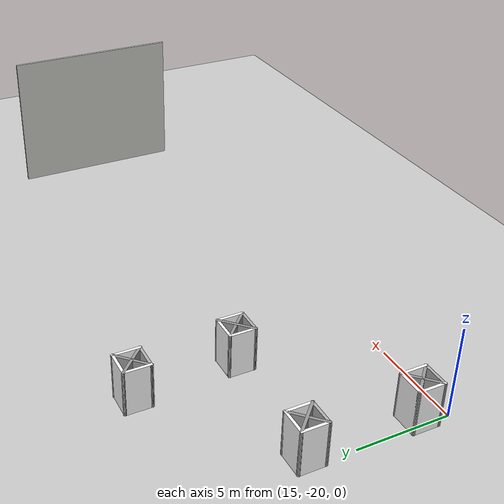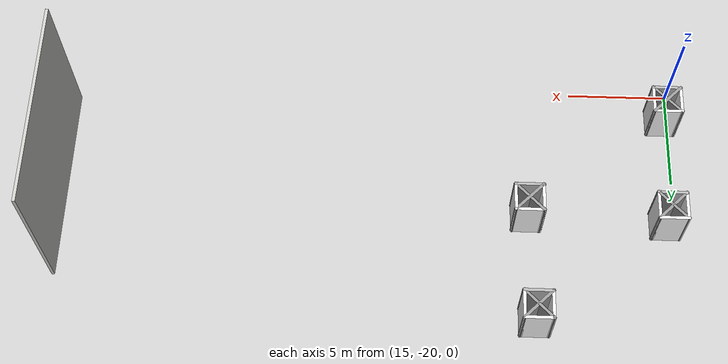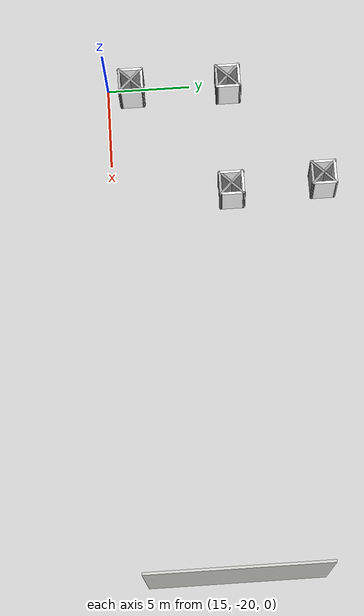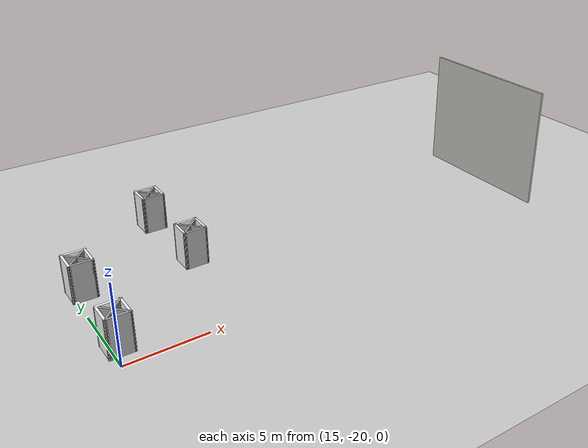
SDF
<sdf version="1.7">
 <world name="default">
  <model name="ground_plane">
   <static>1</static>
   <link name="link">
    <collision name="collision">
     <geometry><plane><normal>0 0 1</normal><size>100 100</size></plane></geometry>
     <surface>
      <contact><collide_bitmask>65535</collide_bitmask></contact>
      <friction><ode><mu>100</mu><mu2>50</mu2></ode></friction>
     </surface>
    </collision>
    <visual name="visual">
     <cast_shadows>0</cast_shadows>
     <geometry><plane><normal>0 0 1</normal><size>100 100</size></plane></geometry>
     <material>
      <script><uri>file://media/materials/scripts/gazebo.material</uri><name>Gazebo/Grey</name></script>
     </material>
    </visual>
   </link>
  </model>
  <model name="Untitled_0_clone_6_clone_clone_clone">
   <link name="Wall_2">
    <pose>-0.307499 -1.8625 0 0 0 -1.5708</pose>
    <inertial>
     <mass>1</mass>
     <inertia><ixx>1</ixx><ixy>0</ixy><ixz>0</ixz><iyy>1</iyy><iyz>0</iyz><izz>1</izz></inertia>
    </inertial>
    <visual name="Wall_2_Visual">
     <pose>0 0 4.05 0 -0 0</pose>
     <geometry><box><size>10 0.15 8.1</size></box></geometry>
     <material>
      <script><uri>file://media/materials/scripts/gazebo.material</uri><name>Gazebo/CeilingTiled</name></script>
      <ambient>1 1 1 1</ambient>
      <shader type="pixel"><normal_map>__default__</normal_map></shader>
      <diffuse>1 1 1 1</diffuse>
      <specular>0 0 0 1</specular>
      <emissive>0 0 0 1</emissive>
     </material>
     <meta><layer>0</layer></meta>
    </visual>
    <collision name="Wall_2_Collision">
     <pose>0 0 4.05 0 -0 0</pose>
     <geometry><box><size>10 0.15 8.1</size></box></geometry>
     <surface>
      <friction>
       <ode><mu>1</mu><mu2>1</mu2><fdir1>0 0 0</fdir1><slip1>0</slip1><slip2>0</slip2></ode>
       <torsional>
        <coefficient>1</coefficient>
        <patch_radius>0</patch_radius>
        <surface_radius>0</surface_radius>
        <use_patch_radius>1</use_patch_radius>
        <ode><slip>0</slip></ode>
       </torsional>
      </friction>
      <bounce><restitution_coefficient>0</restitution_coefficient><threshold>1e+06</threshold></bounce>
      <contact>
       <collide_without_contact>0</collide_without_contact>
       <collide_without_contact_bitmask>1</collide_without_contact_bitmask>
       <collide_bitmask>1</collide_bitmask>
       <ode>
        <soft_cfm>0</soft_cfm>
        <soft_erp>0.2</soft_erp>
        <kp>1e+13</kp>
        <kd>1</kd>
        <max_vel>0.01</max_vel>
        <min_depth>0</min_depth>
       </ode>
       <bullet>
        <split_impulse>1</split_impulse>
        <split_impulse_penetration_threshold>-0.01</split_impulse_penetration_threshold>
        <soft_cfm>0</soft_cfm>
        <soft_erp>0.2</soft_erp>
        <kp>1e+13</kp>
        <kd>1</kd>
       </bullet>
      </contact>
     </surface>
    </collision>
   </link>
   <static>1</static>
   <pose>45.7573 -12.2284 0 0 -0 0</pose>
  </model>
  <model name="Untitled_1_clone_3_clone_clone_4">
   <link name="Wall_10">
    <pose>4.92197 -3.43197 0 0 -0 1.5708</pose>
    <inertial>
     <mass>1</mass>
     <inertia><ixx>1</ixx><ixy>0</ixy><ixz>0</ixz><iyy>1</iyy><iyz>0</iyz><izz>1</izz></inertia>
    </inertial>
    <visual name="Wall_10_Visual">
     <pose>0 0 1.25 0 -0 0</pose>
     <geometry><box><size>1.5 0.15 2.5</size></box></geometry>
     <material>
      <script><uri>file://media/materials/scripts/gazebo.material</uri><name>Gazebo/CoM</name></script>
      <ambient>1 1 1 1</ambient>
      <shader type="pixel"><normal_map>__default__</normal_map></shader>
      <diffuse>1 1 1 1</diffuse>
      <specular>0 0 0 1</specular>
      <emissive>0 0 0 1</emissive>
     </material>
     <meta><layer>0</layer></meta>
    </visual>
    <collision name="Wall_10_Collision">
     <pose>0 0 1.25 0 -0 0</pose>
     <geometry><box><size>1.5 0.15 2.5</size></box></geometry>
     <surface>
      <friction>
       <ode><mu>1</mu><mu2>1</mu2><fdir1>0 0 0</fdir1><slip1>0</slip1><slip2>0</slip2></ode>
       <torsional>
        <coefficient>1</coefficient>
        <patch_radius>0</patch_radius>
        <surface_radius>0</surface_radius>
        <use_patch_radius>1</use_patch_radius>
        <ode><slip>0</slip></ode>
       </torsional>
      </friction>
      <bounce><restitution_coefficient>0</restitution_coefficient><threshold>1e+06</threshold></bounce>
      <contact>
       <collide_without_contact>0</collide_without_contact>
       <collide_without_contact_bitmask>1</collide_without_contact_bitmask>
       <collide_bitmask>1</collide_bitmask>
       <ode>
        <soft_cfm>0</soft_cfm>
        <soft_erp>0.2</soft_erp>
        <kp>1e+13</kp>
        <kd>1</kd>
        <max_vel>0.01</max_vel>
        <min_depth>0</min_depth>
       </ode>
       <bullet>
        <split_impulse>1</split_impulse>
        <split_impulse_penetration_threshold>-0.01</split_impulse_penetration_threshold>
        <soft_cfm>0</soft_cfm>
        <soft_erp>0.2</soft_erp>
        <kp>1e+13</kp>
        <kd>1</kd>
       </bullet>
      </contact>
     </surface>
    </collision>
   </link>
   <link name="Wall_11">
    <pose>5.59697 -3.43197 0 0 0 -0.785398</pose>
    <visual name="Wall_11_Visual">
     <pose>0 0 1.25 0 -0 0</pose>
     <geometry><box><size>2.05919 0.15 2.5</size></box></geometry>
     <material>
      <script><uri>file://media/materials/scripts/gazebo.material</uri><name>Gazebo/Grey</name></script>
      <ambient>1 1 1 1</ambient>
      <shader type="pixel"/>
     </material>
     <meta><layer>0</layer></meta>
    </visual>
    <collision name="Wall_11_Collision">
     <pose>0 0 1.25 0 -0 0</pose>
     <geometry><box><size>2.05919 0.15 2.5</size></box></geometry>
     <surface>
      <friction>
       <ode><mu>1</mu><mu2>1</mu2><fdir1>0 0 0</fdir1><slip1>0</slip1><slip2>0</slip2></ode>
       <torsional>
        <coefficient>1</coefficient>
        <patch_radius>0</patch_radius>
        <surface_radius>0</surface_radius>
        <use_patch_radius>1</use_patch_radius>
        <ode><slip>0</slip></ode>
       </torsional>
      </friction>
      <bounce><restitution_coefficient>0</restitution_coefficient><threshold>1e+06</threshold></bounce>
      <contact>
       <collide_without_contact>0</collide_without_contact>
       <collide_without_contact_bitmask>1</collide_without_contact_bitmask>
       <collide_bitmask>1</collide_bitmask>
       <ode>
        <soft_cfm>0</soft_cfm>
        <soft_erp>0.2</soft_erp>
        <kp>1e+13</kp>
        <kd>1</kd>
        <max_vel>0.01</max_vel>
        <min_depth>0</min_depth>
       </ode>
       <bullet>
        <split_impulse>1</split_impulse>
        <split_impulse_penetration_threshold>-0.01</split_impulse_penetration_threshold>
        <soft_cfm>0</soft_cfm>
        <soft_erp>0.2</soft_erp>
        <kp>1e+13</kp>
        <kd>1</kd>
       </bullet>
      </contact>
     </surface>
    </collision>
   </link>
   <link name="Wall_13">
    <pose>5.59697 -3.43197 0 0 -0 0.785398</pose>
    <visual name="Wall_13_Visual">
     <pose>0 0 1.25 0 -0 0</pose>
     <geometry><box><size>2.05919 0.15 2.5</size></box></geometry>
     <material>
      <script><uri>file://media/materials/scripts/gazebo.material</uri><name>Gazebo/Grey</name></script>
      <ambient>1 1 1 1</ambient>
      <shader type="pixel"/>
     </material>
     <meta><layer>0</layer></meta>
    </visual>
    <collision name="Wall_13_Collision">
     <pose>0 0 1.25 0 -0 0</pose>
     <geometry><box><size>2.05919 0.15 2.5</size></box></geometry>
     <surface>
      <friction>
       <ode><mu>1</mu><mu2>1</mu2><fdir1>0 0 0</fdir1><slip1>0</slip1><slip2>0</slip2></ode>
       <torsional>
        <coefficient>1</coefficient>
        <patch_radius>0</patch_radius>
        <surface_radius>0</surface_radius>
        <use_patch_radius>1</use_patch_radius>
        <ode><slip>0</slip></ode>
       </torsional>
      </friction>
      <bounce><restitution_coefficient>0</restitution_coefficient><threshold>1e+06</threshold></bounce>
      <contact>
       <collide_without_contact>0</collide_without_contact>
       <collide_without_contact_bitmask>1</collide_without_contact_bitmask>
       <collide_bitmask>1</collide_bitmask>
       <ode>
        <soft_cfm>0</soft_cfm>
        <soft_erp>0.2</soft_erp>
        <kp>1e+13</kp>
        <kd>1</kd>
        <max_vel>0.01</max_vel>
        <min_depth>0</min_depth>
       </ode>
       <bullet>
        <split_impulse>1</split_impulse>
        <split_impulse_penetration_threshold>-0.01</split_impulse_penetration_threshold>
        <soft_cfm>0</soft_cfm>
        <soft_erp>0.2</soft_erp>
        <kp>1e+13</kp>
        <kd>1</kd>
       </bullet>
      </contact>
     </surface>
    </collision>
   </link>
   <link name="Wall_7">
    <pose>5.59697 -2.75697 0 0 -0 0</pose>
    <inertial>
     <mass>1</mass>
     <inertia><ixx>1</ixx><ixy>0</ixy><ixz>0</ixz><iyy>1</iyy><iyz>0</iyz><izz>1</izz></inertia>
    </inertial>
    <visual name="Wall_7_Visual">
     <pose>0 0 1.25 0 -0 0</pose>
     <geometry><box><size>1.5 0.15 2.5</size></box></geometry>
     <material>
      <script><uri>file://media/materials/scripts/gazebo.material</uri><name>Gazebo/CoM</name></script>
      <ambient>1 1 1 1</ambient>
      <shader type="pixel"><normal_map>__default__</normal_map></shader>
      <diffuse>1 1 1 1</diffuse>
      <specular>0 0 0 1</specular>
      <emissive>0 0 0 1</emissive>
     </material>
     <meta><layer>0</layer></meta>
    </visual>
    <collision name="Wall_7_Collision">
     <pose>0 0 1.25 0 -0 0</pose>
     <geometry><box><size>1.5 0.15 2.5</size></box></geometry>
     <surface>
      <friction>
       <ode><mu>1</mu><mu2>1</mu2><fdir1>0 0 0</fdir1><slip1>0</slip1><slip2>0</slip2></ode>
       <torsional>
        <coefficient>1</coefficient>
        <patch_radius>0</patch_radius>
        <surface_radius>0</surface_radius>
        <use_patch_radius>1</use_patch_radius>
        <ode><slip>0</slip></ode>
       </torsional>
      </friction>
      <bounce><restitution_coefficient>0</restitution_coefficient><threshold>1e+06</threshold></bounce>
      <contact>
       <collide_without_contact>0</collide_without_contact>
       <collide_without_contact_bitmask>1</collide_without_contact_bitmask>
       <collide_bitmask>1</collide_bitmask>
       <ode>
        <soft_cfm>0</soft_cfm>
        <soft_erp>0.2</soft_erp>
        <kp>1e+13</kp>
        <kd>1</kd>
        <max_vel>0.01</max_vel>
        <min_depth>0</min_depth>
       </ode>
       <bullet>
        <split_impulse>1</split_impulse>
        <split_impulse_penetration_threshold>-0.01</split_impulse_penetration_threshold>
        <soft_cfm>0</soft_cfm>
        <soft_erp>0.2</soft_erp>
        <kp>1e+13</kp>
        <kd>1</kd>
       </bullet>
      </contact>
     </surface>
    </collision>
   </link>
   <link name="Wall_8">
    <pose>6.27197 -3.43197 0 0 0 -1.5708</pose>
    <inertial>
     <mass>1</mass>
     <inertia><ixx>1</ixx><ixy>0</ixy><ixz>0</ixz><iyy>1</iyy><iyz>0</iyz><izz>1</izz></inertia>
    </inertial>
    <visual name="Wall_8_Visual">
     <pose>0 0 1.25 0 -0 0</pose>
     <geometry><box><size>1.5 0.15 2.5</size></box></geometry>
     <material>
      <script><uri>file://media/materials/scripts/gazebo.material</uri><name>Gazebo/CoM</name></script>
      <ambient>1 1 1 1</ambient>
      <shader type="pixel"><normal_map>__default__</normal_map></shader>
      <diffuse>1 1 1 1</diffuse>
      <specular>0 0 0 1</specular>
      <emissive>0 0 0 1</emissive>
     </material>
     <meta><layer>0</layer></meta>
    </visual>
    <collision name="Wall_8_Collision">
     <pose>0 0 1.25 0 -0 0</pose>
     <geometry><box><size>1.5 0.15 2.5</size></box></geometry>
     <surface>
      <friction>
       <ode><mu>1</mu><mu2>1</mu2><fdir1>0 0 0</fdir1><slip1>0</slip1><slip2>0</slip2></ode>
       <torsional>
        <coefficient>1</coefficient>
        <patch_radius>0</patch_radius>
        <surface_radius>0</surface_radius>
        <use_patch_radius>1</use_patch_radius>
        <ode><slip>0</slip></ode>
       </torsional>
      </friction>
      <bounce><restitution_coefficient>0</restitution_coefficient><threshold>1e+06</threshold></bounce>
      <contact>
       <collide_without_contact>0</collide_without_contact>
       <collide_without_contact_bitmask>1</collide_without_contact_bitmask>
       <collide_bitmask>1</collide_bitmask>
       <ode>
        <soft_cfm>0</soft_cfm>
        <soft_erp>0.2</soft_erp>
        <kp>1e+13</kp>
        <kd>1</kd>
        <max_vel>0.01</max_vel>
        <min_depth>0</min_depth>
       </ode>
       <bullet>
        <split_impulse>1</split_impulse>
        <split_impulse_penetration_threshold>-0.01</split_impulse_penetration_threshold>
        <soft_cfm>0</soft_cfm>
        <soft_erp>0.2</soft_erp>
        <kp>1e+13</kp>
        <kd>1</kd>
       </bullet>
      </contact>
     </surface>
    </collision>
   </link>
   <link name="Wall_9">
    <pose>5.59697 -4.10697 0 0 -0 3.14159</pose>
    <inertial>
     <mass>1</mass>
     <inertia><ixx>1</ixx><ixy>0</ixy><ixz>0</ixz><iyy>1</iyy><iyz>0</iyz><izz>1</izz></inertia>
    </inertial>
    <visual name="Wall_9_Visual">
     <pose>0 0 1.25 0 -0 0</pose>
     <geometry><box><size>1.5 0.15 2.5</size></box></geometry>
     <material>
      <script><uri>file://media/materials/scripts/gazebo.material</uri><name>Gazebo/CoM</name></script>
      <ambient>1 1 1 1</ambient>
      <shader type="pixel"><normal_map>__default__</normal_map></shader>
      <diffuse>0.7 0.7 0.7 1</diffuse>
      <specular>0.01 0.01 0.01 1</specular>
      <emissive>0 0 0 1</emissive>
     </material>
     <meta><layer>0</layer></meta>
    </visual>
    <collision name="Wall_9_Collision">
     <pose>0 0 1.25 0 -0 0</pose>
     <geometry><box><size>1.5 0.15 2.5</size></box></geometry>
     <surface>
      <friction>
       <ode><mu>1</mu><mu2>1</mu2><fdir1>0 0 0</fdir1><slip1>0</slip1><slip2>0</slip2></ode>
       <torsional>
        <coefficient>1</coefficient>
        <patch_radius>0</patch_radius>
        <surface_radius>0</surface_radius>
        <use_patch_radius>1</use_patch_radius>
        <ode><slip>0</slip></ode>
       </torsional>
      </friction>
      <bounce><restitution_coefficient>0</restitution_coefficient><threshold>1e+06</threshold></bounce>
      <contact>
       <collide_without_contact>0</collide_without_contact>
       <collide_without_contact_bitmask>1</collide_without_contact_bitmask>
       <collide_bitmask>1</collide_bitmask>
       <ode>
        <soft_cfm>0</soft_cfm>
        <soft_erp>0.2</soft_erp>
        <kp>1e+13</kp>
        <kd>1</kd>
        <max_vel>0.01</max_vel>
        <min_depth>0</min_depth>
       </ode>
       <bullet>
        <split_impulse>1</split_impulse>
        <split_impulse_penetration_threshold>-0.01</split_impulse_penetration_threshold>
        <soft_cfm>0</soft_cfm>
        <soft_erp>0.2</soft_erp>
        <kp>1e+13</kp>
        <kd>1</kd>
       </bullet>
      </contact>
     </surface>
    </collision>
   </link>
   <static>1</static>
   <pose>9.79923 -15.0778 0 0 -0 0</pose>
  </model>
  <model name="Untitled_1_clone_3_clone_clone_5">
   <link name="Wall_10">
    <pose>4.92197 -3.43197 0 0 -0 1.5708</pose>
    <inertial>
     <mass>1</mass>
     <inertia><ixx>1</ixx><ixy>0</ixy><ixz>0</ixz><iyy>1</iyy><iyz>0</iyz><izz>1</izz></inertia>
    </inertial>
    <visual name="Wall_10_Visual">
     <pose>0 0 1.25 0 -0 0</pose>
     <geometry><box><size>1.5 0.15 2.5</size></box></geometry>
     <material>
      <script><uri>file://media/materials/scripts/gazebo.material</uri><name>Gazebo/CoM</name></script>
      <ambient>1 1 1 1</ambient>
      <shader type="pixel"><normal_map>__default__</normal_map></shader>
      <diffuse>1 1 1 1</diffuse>
      <specular>0 0 0 1</specular>
      <emissive>0 0 0 1</emissive>
     </material>
     <meta><layer>0</layer></meta>
    </visual>
    <collision name="Wall_10_Collision">
     <pose>0 0 1.25 0 -0 0</pose>
     <geometry><box><size>1.5 0.15 2.5</size></box></geometry>
     <surface>
      <friction>
       <ode><mu>1</mu><mu2>1</mu2><fdir1>0 0 0</fdir1><slip1>0</slip1><slip2>0</slip2></ode>
       <torsional>
        <coefficient>1</coefficient>
        <patch_radius>0</patch_radius>
        <surface_radius>0</surface_radius>
        <use_patch_radius>1</use_patch_radius>
        <ode><slip>0</slip></ode>
       </torsional>
      </friction>
      <bounce><restitution_coefficient>0</restitution_coefficient><threshold>1e+06</threshold></bounce>
      <contact>
       <collide_without_contact>0</collide_without_contact>
       <collide_without_contact_bitmask>1</collide_without_contact_bitmask>
       <collide_bitmask>1</collide_bitmask>
       <ode>
        <soft_cfm>0</soft_cfm>
        <soft_erp>0.2</soft_erp>
        <kp>1e+13</kp>
        <kd>1</kd>
        <max_vel>0.01</max_vel>
        <min_depth>0</min_depth>
       </ode>
       <bullet>
        <split_impulse>1</split_impulse>
        <split_impulse_penetration_threshold>-0.01</split_impulse_penetration_threshold>
        <soft_cfm>0</soft_cfm>
        <soft_erp>0.2</soft_erp>
        <kp>1e+13</kp>
        <kd>1</kd>
       </bullet>
      </contact>
     </surface>
    </collision>
   </link>
   <link name="Wall_11">
    <pose>5.59697 -3.43197 0 0 0 -0.785398</pose>
    <visual name="Wall_11_Visual">
     <pose>0 0 1.25 0 -0 0</pose>
     <geometry><box><size>2.05919 0.15 2.5</size></box></geometry>
     <material>
      <script><uri>file://media/materials/scripts/gazebo.material</uri><name>Gazebo/Grey</name></script>
      <ambient>1 1 1 1</ambient>
      <shader type="pixel"/>
     </material>
     <meta><layer>0</layer></meta>
    </visual>
    <collision name="Wall_11_Collision">
     <pose>0 0 1.25 0 -0 0</pose>
     <geometry><box><size>2.05919 0.15 2.5</size></box></geometry>
     <surface>
      <friction>
       <ode><mu>1</mu><mu2>1</mu2><fdir1>0 0 0</fdir1><slip1>0</slip1><slip2>0</slip2></ode>
       <torsional>
        <coefficient>1</coefficient>
        <patch_radius>0</patch_radius>
        <surface_radius>0</surface_radius>
        <use_patch_radius>1</use_patch_radius>
        <ode><slip>0</slip></ode>
       </torsional>
      </friction>
      <bounce><restitution_coefficient>0</restitution_coefficient><threshold>1e+06</threshold></bounce>
      <contact>
       <collide_without_contact>0</collide_without_contact>
       <collide_without_contact_bitmask>1</collide_without_contact_bitmask>
       <collide_bitmask>1</collide_bitmask>
       <ode>
        <soft_cfm>0</soft_cfm>
        <soft_erp>0.2</soft_erp>
        <kp>1e+13</kp>
        <kd>1</kd>
        <max_vel>0.01</max_vel>
        <min_depth>0</min_depth>
       </ode>
       <bullet>
        <split_impulse>1</split_impulse>
        <split_impulse_penetration_threshold>-0.01</split_impulse_penetration_threshold>
        <soft_cfm>0</soft_cfm>
        <soft_erp>0.2</soft_erp>
        <kp>1e+13</kp>
        <kd>1</kd>
       </bullet>
      </contact>
     </surface>
    </collision>
   </link>
   <link name="Wall_13">
    <pose>5.59697 -3.43197 0 0 -0 0.785398</pose>
    <visual name="Wall_13_Visual">
     <pose>0 0 1.25 0 -0 0</pose>
     <geometry><box><size>2.05919 0.15 2.5</size></box></geometry>
     <material>
      <script><uri>file://media/materials/scripts/gazebo.material</uri><name>Gazebo/Grey</name></script>
      <ambient>1 1 1 1</ambient>
      <shader type="pixel"/>
     </material>
     <meta><layer>0</layer></meta>
    </visual>
    <collision name="Wall_13_Collision">
     <pose>0 0 1.25 0 -0 0</pose>
     <geometry><box><size>2.05919 0.15 2.5</size></box></geometry>
     <surface>
      <friction>
       <ode><mu>1</mu><mu2>1</mu2><fdir1>0 0 0</fdir1><slip1>0</slip1><slip2>0</slip2></ode>
       <torsional>
        <coefficient>1</coefficient>
        <patch_radius>0</patch_radius>
        <surface_radius>0</surface_radius>
        <use_patch_radius>1</use_patch_radius>
        <ode><slip>0</slip></ode>
       </torsional>
      </friction>
      <bounce><restitution_coefficient>0</restitution_coefficient><threshold>1e+06</threshold></bounce>
      <contact>
       <collide_without_contact>0</collide_without_contact>
       <collide_without_contact_bitmask>1</collide_without_contact_bitmask>
       <collide_bitmask>1</collide_bitmask>
       <ode>
        <soft_cfm>0</soft_cfm>
        <soft_erp>0.2</soft_erp>
        <kp>1e+13</kp>
        <kd>1</kd>
        <max_vel>0.01</max_vel>
        <min_depth>0</min_depth>
       </ode>
       <bullet>
        <split_impulse>1</split_impulse>
        <split_impulse_penetration_threshold>-0.01</split_impulse_penetration_threshold>
        <soft_cfm>0</soft_cfm>
        <soft_erp>0.2</soft_erp>
        <kp>1e+13</kp>
        <kd>1</kd>
       </bullet>
      </contact>
     </surface>
    </collision>
   </link>
   <link name="Wall_7">
    <pose>5.59697 -2.75697 0 0 -0 0</pose>
    <inertial>
     <mass>1</mass>
     <inertia><ixx>1</ixx><ixy>0</ixy><ixz>0</ixz><iyy>1</iyy><iyz>0</iyz><izz>1</izz></inertia>
    </inertial>
    <visual name="Wall_7_Visual">
     <pose>0 0 1.25 0 -0 0</pose>
     <geometry><box><size>1.5 0.15 2.5</size></box></geometry>
     <material>
      <script><uri>file://media/materials/scripts/gazebo.material</uri><name>Gazebo/CoM</name></script>
      <ambient>1 1 1 1</ambient>
      <shader type="pixel"><normal_map>__default__</normal_map></shader>
      <diffuse>1 1 1 1</diffuse>
      <specular>0 0 0 1</specular>
      <emissive>0 0 0 1</emissive>
     </material>
     <meta><layer>0</layer></meta>
    </visual>
    <collision name="Wall_7_Collision">
     <pose>0 0 1.25 0 -0 0</pose>
     <geometry><box><size>1.5 0.15 2.5</size></box></geometry>
     <surface>
      <friction>
       <ode><mu>1</mu><mu2>1</mu2><fdir1>0 0 0</fdir1><slip1>0</slip1><slip2>0</slip2></ode>
       <torsional>
        <coefficient>1</coefficient>
        <patch_radius>0</patch_radius>
        <surface_radius>0</surface_radius>
        <use_patch_radius>1</use_patch_radius>
        <ode><slip>0</slip></ode>
       </torsional>
      </friction>
      <bounce><restitution_coefficient>0</restitution_coefficient><threshold>1e+06</threshold></bounce>
      <contact>
       <collide_without_contact>0</collide_without_contact>
       <collide_without_contact_bitmask>1</collide_without_contact_bitmask>
       <collide_bitmask>1</collide_bitmask>
       <ode>
        <soft_cfm>0</soft_cfm>
        <soft_erp>0.2</soft_erp>
        <kp>1e+13</kp>
        <kd>1</kd>
        <max_vel>0.01</max_vel>
        <min_depth>0</min_depth>
       </ode>
       <bullet>
        <split_impulse>1</split_impulse>
        <split_impulse_penetration_threshold>-0.01</split_impulse_penetration_threshold>
        <soft_cfm>0</soft_cfm>
        <soft_erp>0.2</soft_erp>
        <kp>1e+13</kp>
        <kd>1</kd>
       </bullet>
      </contact>
     </surface>
    </collision>
   </link>
   <link name="Wall_8">
    <pose>6.27197 -3.43197 0 0 0 -1.5708</pose>
    <inertial>
     <mass>1</mass>
     <inertia><ixx>1</ixx><ixy>0</ixy><ixz>0</ixz><iyy>1</iyy><iyz>0</iyz><izz>1</izz></inertia>
    </inertial>
    <visual name="Wall_8_Visual">
     <pose>0 0 1.25 0 -0 0</pose>
     <geometry><box><size>1.5 0.15 2.5</size></box></geometry>
     <material>
      <script><uri>file://media/materials/scripts/gazebo.material</uri><name>Gazebo/CoM</name></script>
      <ambient>1 1 1 1</ambient>
      <shader type="pixel"><normal_map>__default__</normal_map></shader>
      <diffuse>1 1 1 1</diffuse>
      <specular>0 0 0 1</specular>
      <emissive>0 0 0 1</emissive>
     </material>
     <meta><layer>0</layer></meta>
    </visual>
    <collision name="Wall_8_Collision">
     <pose>0 0 1.25 0 -0 0</pose>
     <geometry><box><size>1.5 0.15 2.5</size></box></geometry>
     <surface>
      <friction>
       <ode><mu>1</mu><mu2>1</mu2><fdir1>0 0 0</fdir1><slip1>0</slip1><slip2>0</slip2></ode>
       <torsional>
        <coefficient>1</coefficient>
        <patch_radius>0</patch_radius>
        <surface_radius>0</surface_radius>
        <use_patch_radius>1</use_patch_radius>
        <ode><slip>0</slip></ode>
       </torsional>
      </friction>
      <bounce><restitution_coefficient>0</restitution_coefficient><threshold>1e+06</threshold></bounce>
      <contact>
       <collide_without_contact>0</collide_without_contact>
       <collide_without_contact_bitmask>1</collide_without_contact_bitmask>
       <collide_bitmask>1</collide_bitmask>
       <ode>
        <soft_cfm>0</soft_cfm>
        <soft_erp>0.2</soft_erp>
        <kp>1e+13</kp>
        <kd>1</kd>
        <max_vel>0.01</max_vel>
        <min_depth>0</min_depth>
       </ode>
       <bullet>
        <split_impulse>1</split_impulse>
        <split_impulse_penetration_threshold>-0.01</split_impulse_penetration_threshold>
        <soft_cfm>0</soft_cfm>
        <soft_erp>0.2</soft_erp>
        <kp>1e+13</kp>
        <kd>1</kd>
       </bullet>
      </contact>
     </surface>
    </collision>
   </link>
   <link name="Wall_9">
    <pose>5.59697 -4.10697 0 0 -0 3.14159</pose>
    <inertial>
     <mass>1</mass>
     <inertia><ixx>1</ixx><ixy>0</ixy><ixz>0</ixz><iyy>1</iyy><iyz>0</iyz><izz>1</izz></inertia>
    </inertial>
    <visual name="Wall_9_Visual">
     <pose>0 0 1.25 0 -0 0</pose>
     <geometry><box><size>1.5 0.15 2.5</size></box></geometry>
     <material>
      <script><uri>file://media/materials/scripts/gazebo.material</uri><name>Gazebo/CoM</name></script>
      <ambient>1 1 1 1</ambient>
      <shader type="pixel"><normal_map>__default__</normal_map></shader>
      <diffuse>0.7 0.7 0.7 1</diffuse>
      <specular>0.01 0.01 0.01 1</specular>
      <emissive>0 0 0 1</emissive>
     </material>
     <meta><layer>0</layer></meta>
    </visual>
    <collision name="Wall_9_Collision">
     <pose>0 0 1.25 0 -0 0</pose>
     <geometry><box><size>1.5 0.15 2.5</size></box></geometry>
     <surface>
      <friction>
       <ode><mu>1</mu><mu2>1</mu2><fdir1>0 0 0</fdir1><slip1>0</slip1><slip2>0</slip2></ode>
       <torsional>
        <coefficient>1</coefficient>
        <patch_radius>0</patch_radius>
        <surface_radius>0</surface_radius>
        <use_patch_radius>1</use_patch_radius>
        <ode><slip>0</slip></ode>
       </torsional>
      </friction>
      <bounce><restitution_coefficient>0</restitution_coefficient><threshold>1e+06</threshold></bounce>
      <contact>
       <collide_without_contact>0</collide_without_contact>
       <collide_without_contact_bitmask>1</collide_without_contact_bitmask>
       <collide_bitmask>1</collide_bitmask>
       <ode>
        <soft_cfm>0</soft_cfm>
        <soft_erp>0.2</soft_erp>
        <kp>1e+13</kp>
        <kd>1</kd>
        <max_vel>0.01</max_vel>
        <min_depth>0</min_depth>
       </ode>
       <bullet>
        <split_impulse>1</split_impulse>
        <split_impulse_penetration_threshold>-0.01</split_impulse_penetration_threshold>
        <soft_cfm>0</soft_cfm>
        <soft_erp>0.2</soft_erp>
        <kp>1e+13</kp>
        <kd>1</kd>
       </bullet>
      </contact>
     </surface>
    </collision>
   </link>
   <static>1</static>
   <pose>16.7984 -9.42523 0 0 -0 0</pose>
  </model>
  <model name="Untitled_1_clone_3_clone_clone_6">
   <link name="Wall_10">
    <pose>4.92197 -3.43197 0 0 -0 1.5708</pose>
    <inertial>
     <mass>1</mass>
     <inertia><ixx>1</ixx><ixy>0</ixy><ixz>0</ixz><iyy>1</iyy><iyz>0</iyz><izz>1</izz></inertia>
    </inertial>
    <visual name="Wall_10_Visual">
     <pose>0 0 1.25 0 -0 0</pose>
     <geometry><box><size>1.5 0.15 2.5</size></box></geometry>
     <material>
      <script><uri>file://media/materials/scripts/gazebo.material</uri><name>Gazebo/CoM</name></script>
      <ambient>1 1 1 1</ambient>
      <shader type="pixel"><normal_map>__default__</normal_map></shader>
      <diffuse>1 1 1 1</diffuse>
      <specular>0 0 0 1</specular>
      <emissive>0 0 0 1</emissive>
     </material>
     <meta><layer>0</layer></meta>
    </visual>
    <collision name="Wall_10_Collision">
     <pose>0 0 1.25 0 -0 0</pose>
     <geometry><box><size>1.5 0.15 2.5</size></box></geometry>
     <surface>
      <friction>
       <ode><mu>1</mu><mu2>1</mu2><fdir1>0 0 0</fdir1><slip1>0</slip1><slip2>0</slip2></ode>
       <torsional>
        <coefficient>1</coefficient>
        <patch_radius>0</patch_radius>
        <surface_radius>0</surface_radius>
        <use_patch_radius>1</use_patch_radius>
        <ode><slip>0</slip></ode>
       </torsional>
      </friction>
      <bounce><restitution_coefficient>0</restitution_coefficient><threshold>1e+06</threshold></bounce>
      <contact>
       <collide_without_contact>0</collide_without_contact>
       <collide_without_contact_bitmask>1</collide_without_contact_bitmask>
       <collide_bitmask>1</collide_bitmask>
       <ode>
        <soft_cfm>0</soft_cfm>
        <soft_erp>0.2</soft_erp>
        <kp>1e+13</kp>
        <kd>1</kd>
        <max_vel>0.01</max_vel>
        <min_depth>0</min_depth>
       </ode>
       <bullet>
        <split_impulse>1</split_impulse>
        <split_impulse_penetration_threshold>-0.01</split_impulse_penetration_threshold>
        <soft_cfm>0</soft_cfm>
        <soft_erp>0.2</soft_erp>
        <kp>1e+13</kp>
        <kd>1</kd>
       </bullet>
      </contact>
     </surface>
    </collision>
   </link>
   <link name="Wall_11">
    <pose>5.59697 -3.43197 0 0 0 -0.785398</pose>
    <visual name="Wall_11_Visual">
     <pose>0 0 1.25 0 -0 0</pose>
     <geometry><box><size>2.05919 0.15 2.5</size></box></geometry>
     <material>
      <script><uri>file://media/materials/scripts/gazebo.material</uri><name>Gazebo/Grey</name></script>
      <ambient>1 1 1 1</ambient>
      <shader type="pixel"/>
     </material>
     <meta><layer>0</layer></meta>
    </visual>
    <collision name="Wall_11_Collision">
     <pose>0 0 1.25 0 -0 0</pose>
     <geometry><box><size>2.05919 0.15 2.5</size></box></geometry>
     <surface>
      <friction>
       <ode><mu>1</mu><mu2>1</mu2><fdir1>0 0 0</fdir1><slip1>0</slip1><slip2>0</slip2></ode>
       <torsional>
        <coefficient>1</coefficient>
        <patch_radius>0</patch_radius>
        <surface_radius>0</surface_radius>
        <use_patch_radius>1</use_patch_radius>
        <ode><slip>0</slip></ode>
       </torsional>
      </friction>
      <bounce><restitution_coefficient>0</restitution_coefficient><threshold>1e+06</threshold></bounce>
      <contact>
       <collide_without_contact>0</collide_without_contact>
       <collide_without_contact_bitmask>1</collide_without_contact_bitmask>
       <collide_bitmask>1</collide_bitmask>
       <ode>
        <soft_cfm>0</soft_cfm>
        <soft_erp>0.2</soft_erp>
        <kp>1e+13</kp>
        <kd>1</kd>
        <max_vel>0.01</max_vel>
        <min_depth>0</min_depth>
       </ode>
       <bullet>
        <split_impulse>1</split_impulse>
        <split_impulse_penetration_threshold>-0.01</split_impulse_penetration_threshold>
        <soft_cfm>0</soft_cfm>
        <soft_erp>0.2</soft_erp>
        <kp>1e+13</kp>
        <kd>1</kd>
       </bullet>
      </contact>
     </surface>
    </collision>
   </link>
   <link name="Wall_13">
    <pose>5.59697 -3.43197 0 0 -0 0.785398</pose>
    <visual name="Wall_13_Visual">
     <pose>0 0 1.25 0 -0 0</pose>
     <geometry><box><size>2.05919 0.15 2.5</size></box></geometry>
     <material>
      <script><uri>file://media/materials/scripts/gazebo.material</uri><name>Gazebo/Grey</name></script>
      <ambient>1 1 1 1</ambient>
      <shader type="pixel"/>
     </material>
     <meta><layer>0</layer></meta>
    </visual>
    <collision name="Wall_13_Collision">
     <pose>0 0 1.25 0 -0 0</pose>
     <geometry><box><size>2.05919 0.15 2.5</size></box></geometry>
     <surface>
      <friction>
       <ode><mu>1</mu><mu2>1</mu2><fdir1>0 0 0</fdir1><slip1>0</slip1><slip2>0</slip2></ode>
       <torsional>
        <coefficient>1</coefficient>
        <patch_radius>0</patch_radius>
        <surface_radius>0</surface_radius>
        <use_patch_radius>1</use_patch_radius>
        <ode><slip>0</slip></ode>
       </torsional>
      </friction>
      <bounce><restitution_coefficient>0</restitution_coefficient><threshold>1e+06</threshold></bounce>
      <contact>
       <collide_without_contact>0</collide_without_contact>
       <collide_without_contact_bitmask>1</collide_without_contact_bitmask>
       <collide_bitmask>1</collide_bitmask>
       <ode>
        <soft_cfm>0</soft_cfm>
        <soft_erp>0.2</soft_erp>
        <kp>1e+13</kp>
        <kd>1</kd>
        <max_vel>0.01</max_vel>
        <min_depth>0</min_depth>
       </ode>
       <bullet>
        <split_impulse>1</split_impulse>
        <split_impulse_penetration_threshold>-0.01</split_impulse_penetration_threshold>
        <soft_cfm>0</soft_cfm>
        <soft_erp>0.2</soft_erp>
        <kp>1e+13</kp>
        <kd>1</kd>
       </bullet>
      </contact>
     </surface>
    </collision>
   </link>
   <link name="Wall_7">
    <pose>5.59697 -2.75697 0 0 -0 0</pose>
    <inertial>
     <mass>1</mass>
     <inertia><ixx>1</ixx><ixy>0</ixy><ixz>0</ixz><iyy>1</iyy><iyz>0</iyz><izz>1</izz></inertia>
    </inertial>
    <visual name="Wall_7_Visual">
     <pose>0 0 1.25 0 -0 0</pose>
     <geometry><box><size>1.5 0.15 2.5</size></box></geometry>
     <material>
      <script><uri>file://media/materials/scripts/gazebo.material</uri><name>Gazebo/CoM</name></script>
      <ambient>1 1 1 1</ambient>
      <shader type="pixel"><normal_map>__default__</normal_map></shader>
      <diffuse>1 1 1 1</diffuse>
      <specular>0 0 0 1</specular>
      <emissive>0 0 0 1</emissive>
     </material>
     <meta><layer>0</layer></meta>
    </visual>
    <collision name="Wall_7_Collision">
     <pose>0 0 1.25 0 -0 0</pose>
     <geometry><box><size>1.5 0.15 2.5</size></box></geometry>
     <surface>
      <friction>
       <ode><mu>1</mu><mu2>1</mu2><fdir1>0 0 0</fdir1><slip1>0</slip1><slip2>0</slip2></ode>
       <torsional>
        <coefficient>1</coefficient>
        <patch_radius>0</patch_radius>
        <surface_radius>0</surface_radius>
        <use_patch_radius>1</use_patch_radius>
        <ode><slip>0</slip></ode>
       </torsional>
      </friction>
      <bounce><restitution_coefficient>0</restitution_coefficient><threshold>1e+06</threshold></bounce>
      <contact>
       <collide_without_contact>0</collide_without_contact>
       <collide_without_contact_bitmask>1</collide_without_contact_bitmask>
       <collide_bitmask>1</collide_bitmask>
       <ode>
        <soft_cfm>0</soft_cfm>
        <soft_erp>0.2</soft_erp>
        <kp>1e+13</kp>
        <kd>1</kd>
        <max_vel>0.01</max_vel>
        <min_depth>0</min_depth>
       </ode>
       <bullet>
        <split_impulse>1</split_impulse>
        <split_impulse_penetration_threshold>-0.01</split_impulse_penetration_threshold>
        <soft_cfm>0</soft_cfm>
        <soft_erp>0.2</soft_erp>
        <kp>1e+13</kp>
        <kd>1</kd>
       </bullet>
      </contact>
     </surface>
    </collision>
   </link>
   <link name="Wall_8">
    <pose>6.27197 -3.43197 0 0 0 -1.5708</pose>
    <inertial>
     <mass>1</mass>
     <inertia><ixx>1</ixx><ixy>0</ixy><ixz>0</ixz><iyy>1</iyy><iyz>0</iyz><izz>1</izz></inertia>
    </inertial>
    <visual name="Wall_8_Visual">
     <pose>0 0 1.25 0 -0 0</pose>
     <geometry><box><size>1.5 0.15 2.5</size></box></geometry>
     <material>
      <script><uri>file://media/materials/scripts/gazebo.material</uri><name>Gazebo/CoM</name></script>
      <ambient>1 1 1 1</ambient>
      <shader type="pixel"><normal_map>__default__</normal_map></shader>
      <diffuse>1 1 1 1</diffuse>
      <specular>0 0 0 1</specular>
      <emissive>0 0 0 1</emissive>
     </material>
     <meta><layer>0</layer></meta>
    </visual>
    <collision name="Wall_8_Collision">
     <pose>0 0 1.25 0 -0 0</pose>
     <geometry><box><size>1.5 0.15 2.5</size></box></geometry>
     <surface>
      <friction>
       <ode><mu>1</mu><mu2>1</mu2><fdir1>0 0 0</fdir1><slip1>0</slip1><slip2>0</slip2></ode>
       <torsional>
        <coefficient>1</coefficient>
        <patch_radius>0</patch_radius>
        <surface_radius>0</surface_radius>
        <use_patch_radius>1</use_patch_radius>
        <ode><slip>0</slip></ode>
       </torsional>
      </friction>
      <bounce><restitution_coefficient>0</restitution_coefficient><threshold>1e+06</threshold></bounce>
      <contact>
       <collide_without_contact>0</collide_without_contact>
       <collide_without_contact_bitmask>1</collide_without_contact_bitmask>
       <collide_bitmask>1</collide_bitmask>
       <ode>
        <soft_cfm>0</soft_cfm>
        <soft_erp>0.2</soft_erp>
        <kp>1e+13</kp>
        <kd>1</kd>
        <max_vel>0.01</max_vel>
        <min_depth>0</min_depth>
       </ode>
       <bullet>
        <split_impulse>1</split_impulse>
        <split_impulse_penetration_threshold>-0.01</split_impulse_penetration_threshold>
        <soft_cfm>0</soft_cfm>
        <soft_erp>0.2</soft_erp>
        <kp>1e+13</kp>
        <kd>1</kd>
       </bullet>
      </contact>
     </surface>
    </collision>
   </link>
   <link name="Wall_9">
    <pose>5.59697 -4.10697 0 0 -0 3.14159</pose>
    <inertial>
     <mass>1</mass>
     <inertia><ixx>1</ixx><ixy>0</ixy><ixz>0</ixz><iyy>1</iyy><iyz>0</iyz><izz>1</izz></inertia>
    </inertial>
    <visual name="Wall_9_Visual">
     <pose>0 0 1.25 0 -0 0</pose>
     <geometry><box><size>1.5 0.15 2.5</size></box></geometry>
     <material>
      <script><uri>file://media/materials/scripts/gazebo.material</uri><name>Gazebo/CoM</name></script>
      <ambient>1 1 1 1</ambient>
      <shader type="pixel"><normal_map>__default__</normal_map></shader>
      <diffuse>0.7 0.7 0.7 1</diffuse>
      <specular>0.01 0.01 0.01 1</specular>
      <emissive>0 0 0 1</emissive>
     </material>
     <meta><layer>0</layer></meta>
    </visual>
    <collision name="Wall_9_Collision">
     <pose>0 0 1.25 0 -0 0</pose>
     <geometry><box><size>1.5 0.15 2.5</size></box></geometry>
     <surface>
      <friction>
       <ode><mu>1</mu><mu2>1</mu2><fdir1>0 0 0</fdir1><slip1>0</slip1><slip2>0</slip2></ode>
       <torsional>
        <coefficient>1</coefficient>
        <patch_radius>0</patch_radius>
        <surface_radius>0</surface_radius>
        <use_patch_radius>1</use_patch_radius>
        <ode><slip>0</slip></ode>
       </torsional>
      </friction>
      <bounce><restitution_coefficient>0</restitution_coefficient><threshold>1e+06</threshold></bounce>
      <contact>
       <collide_without_contact>0</collide_without_contact>
       <collide_without_contact_bitmask>1</collide_without_contact_bitmask>
       <collide_bitmask>1</collide_bitmask>
       <ode>
        <soft_cfm>0</soft_cfm>
        <soft_erp>0.2</soft_erp>
        <kp>1e+13</kp>
        <kd>1</kd>
        <max_vel>0.01</max_vel>
        <min_depth>0</min_depth>
       </ode>
       <bullet>
        <split_impulse>1</split_impulse>
        <split_impulse_penetration_threshold>-0.01</split_impulse_penetration_threshold>
        <soft_cfm>0</soft_cfm>
        <soft_erp>0.2</soft_erp>
        <kp>1e+13</kp>
        <kd>1</kd>
       </bullet>
      </contact>
     </surface>
    </collision>
   </link>
   <static>1</static>
   <pose>9.91523 -9.19583 0 0 -0 0</pose>
  </model>
  <model name="Untitled_1_clone_3_clone_clone_7">
   <link name="Wall_10">
    <pose>4.92197 -3.43197 0 0 -0 1.5708</pose>
    <inertial>
     <mass>1</mass>
     <inertia><ixx>1</ixx><ixy>0</ixy><ixz>0</ixz><iyy>1</iyy><iyz>0</iyz><izz>1</izz></inertia>
    </inertial>
    <visual name="Wall_10_Visual">
     <pose>0 0 1.25 0 -0 0</pose>
     <geometry><box><size>1.5 0.15 2.5</size></box></geometry>
     <material>
      <script><uri>file://media/materials/scripts/gazebo.material</uri><name>Gazebo/CoM</name></script>
      <ambient>1 1 1 1</ambient>
      <shader type="pixel"><normal_map>__default__</normal_map></shader>
      <diffuse>1 1 1 1</diffuse>
      <specular>0 0 0 1</specular>
      <emissive>0 0 0 1</emissive>
     </material>
     <meta><layer>0</layer></meta>
    </visual>
    <collision name="Wall_10_Collision">
     <pose>0 0 1.25 0 -0 0</pose>
     <geometry><box><size>1.5 0.15 2.5</size></box></geometry>
     <surface>
      <friction>
       <ode><mu>1</mu><mu2>1</mu2><fdir1>0 0 0</fdir1><slip1>0</slip1><slip2>0</slip2></ode>
       <torsional>
        <coefficient>1</coefficient>
        <patch_radius>0</patch_radius>
        <surface_radius>0</surface_radius>
        <use_patch_radius>1</use_patch_radius>
        <ode><slip>0</slip></ode>
       </torsional>
      </friction>
      <bounce><restitution_coefficient>0</restitution_coefficient><threshold>1e+06</threshold></bounce>
      <contact>
       <collide_without_contact>0</collide_without_contact>
       <collide_without_contact_bitmask>1</collide_without_contact_bitmask>
       <collide_bitmask>1</collide_bitmask>
       <ode>
        <soft_cfm>0</soft_cfm>
        <soft_erp>0.2</soft_erp>
        <kp>1e+13</kp>
        <kd>1</kd>
        <max_vel>0.01</max_vel>
        <min_depth>0</min_depth>
       </ode>
       <bullet>
        <split_impulse>1</split_impulse>
        <split_impulse_penetration_threshold>-0.01</split_impulse_penetration_threshold>
        <soft_cfm>0</soft_cfm>
        <soft_erp>0.2</soft_erp>
        <kp>1e+13</kp>
        <kd>1</kd>
       </bullet>
      </contact>
     </surface>
    </collision>
   </link>
   <link name="Wall_11">
    <pose>5.59697 -3.43197 0 0 0 -0.785398</pose>
    <visual name="Wall_11_Visual">
     <pose>0 0 1.25 0 -0 0</pose>
     <geometry><box><size>2.05919 0.15 2.5</size></box></geometry>
     <material>
      <script><uri>file://media/materials/scripts/gazebo.material</uri><name>Gazebo/Grey</name></script>
      <ambient>1 1 1 1</ambient>
      <shader type="pixel"/>
     </material>
     <meta><layer>0</layer></meta>
    </visual>
    <collision name="Wall_11_Collision">
     <pose>0 0 1.25 0 -0 0</pose>
     <geometry><box><size>2.05919 0.15 2.5</size></box></geometry>
     <surface>
      <friction>
       <ode><mu>1</mu><mu2>1</mu2><fdir1>0 0 0</fdir1><slip1>0</slip1><slip2>0</slip2></ode>
       <torsional>
        <coefficient>1</coefficient>
        <patch_radius>0</patch_radius>
        <surface_radius>0</surface_radius>
        <use_patch_radius>1</use_patch_radius>
        <ode><slip>0</slip></ode>
       </torsional>
      </friction>
      <bounce><restitution_coefficient>0</restitution_coefficient><threshold>1e+06</threshold></bounce>
      <contact>
       <collide_without_contact>0</collide_without_contact>
       <collide_without_contact_bitmask>1</collide_without_contact_bitmask>
       <collide_bitmask>1</collide_bitmask>
       <ode>
        <soft_cfm>0</soft_cfm>
        <soft_erp>0.2</soft_erp>
        <kp>1e+13</kp>
        <kd>1</kd>
        <max_vel>0.01</max_vel>
        <min_depth>0</min_depth>
       </ode>
       <bullet>
        <split_impulse>1</split_impulse>
        <split_impulse_penetration_threshold>-0.01</split_impulse_penetration_threshold>
        <soft_cfm>0</soft_cfm>
        <soft_erp>0.2</soft_erp>
        <kp>1e+13</kp>
        <kd>1</kd>
       </bullet>
      </contact>
     </surface>
    </collision>
   </link>
   <link name="Wall_13">
    <pose>5.59697 -3.43197 0 0 -0 0.785398</pose>
    <visual name="Wall_13_Visual">
     <pose>0 0 1.25 0 -0 0</pose>
     <geometry><box><size>2.05919 0.15 2.5</size></box></geometry>
     <material>
      <script><uri>file://media/materials/scripts/gazebo.material</uri><name>Gazebo/Grey</name></script>
      <ambient>1 1 1 1</ambient>
      <shader type="pixel"/>
     </material>
     <meta><layer>0</layer></meta>
    </visual>
    <collision name="Wall_13_Collision">
     <pose>0 0 1.25 0 -0 0</pose>
     <geometry><box><size>2.05919 0.15 2.5</size></box></geometry>
     <surface>
      <friction>
       <ode><mu>1</mu><mu2>1</mu2><fdir1>0 0 0</fdir1><slip1>0</slip1><slip2>0</slip2></ode>
       <torsional>
        <coefficient>1</coefficient>
        <patch_radius>0</patch_radius>
        <surface_radius>0</surface_radius>
        <use_patch_radius>1</use_patch_radius>
        <ode><slip>0</slip></ode>
       </torsional>
      </friction>
      <bounce><restitution_coefficient>0</restitution_coefficient><threshold>1e+06</threshold></bounce>
      <contact>
       <collide_without_contact>0</collide_without_contact>
       <collide_without_contact_bitmask>1</collide_without_contact_bitmask>
       <collide_bitmask>1</collide_bitmask>
       <ode>
        <soft_cfm>0</soft_cfm>
        <soft_erp>0.2</soft_erp>
        <kp>1e+13</kp>
        <kd>1</kd>
        <max_vel>0.01</max_vel>
        <min_depth>0</min_depth>
       </ode>
       <bullet>
        <split_impulse>1</split_impulse>
        <split_impulse_penetration_threshold>-0.01</split_impulse_penetration_threshold>
        <soft_cfm>0</soft_cfm>
        <soft_erp>0.2</soft_erp>
        <kp>1e+13</kp>
        <kd>1</kd>
       </bullet>
      </contact>
     </surface>
    </collision>
   </link>
   <link name="Wall_7">
    <pose>5.59697 -2.75697 0 0 -0 0</pose>
    <inertial>
     <mass>1</mass>
     <inertia><ixx>1</ixx><ixy>0</ixy><ixz>0</ixz><iyy>1</iyy><iyz>0</iyz><izz>1</izz></inertia>
    </inertial>
    <visual name="Wall_7_Visual">
     <pose>0 0 1.25 0 -0 0</pose>
     <geometry><box><size>1.5 0.15 2.5</size></box></geometry>
     <material>
      <script><uri>file://media/materials/scripts/gazebo.material</uri><name>Gazebo/CoM</name></script>
      <ambient>1 1 1 1</ambient>
      <shader type="pixel"><normal_map>__default__</normal_map></shader>
      <diffuse>1 1 1 1</diffuse>
      <specular>0 0 0 1</specular>
      <emissive>0 0 0 1</emissive>
     </material>
     <meta><layer>0</layer></meta>
    </visual>
    <collision name="Wall_7_Collision">
     <pose>0 0 1.25 0 -0 0</pose>
     <geometry><box><size>1.5 0.15 2.5</size></box></geometry>
     <surface>
      <friction>
       <ode><mu>1</mu><mu2>1</mu2><fdir1>0 0 0</fdir1><slip1>0</slip1><slip2>0</slip2></ode>
       <torsional>
        <coefficient>1</coefficient>
        <patch_radius>0</patch_radius>
        <surface_radius>0</surface_radius>
        <use_patch_radius>1</use_patch_radius>
        <ode><slip>0</slip></ode>
       </torsional>
      </friction>
      <bounce><restitution_coefficient>0</restitution_coefficient><threshold>1e+06</threshold></bounce>
      <contact>
       <collide_without_contact>0</collide_without_contact>
       <collide_without_contact_bitmask>1</collide_without_contact_bitmask>
       <collide_bitmask>1</collide_bitmask>
       <ode>
        <soft_cfm>0</soft_cfm>
        <soft_erp>0.2</soft_erp>
        <kp>1e+13</kp>
        <kd>1</kd>
        <max_vel>0.01</max_vel>
        <min_depth>0</min_depth>
       </ode>
       <bullet>
        <split_impulse>1</split_impulse>
        <split_impulse_penetration_threshold>-0.01</split_impulse_penetration_threshold>
        <soft_cfm>0</soft_cfm>
        <soft_erp>0.2</soft_erp>
        <kp>1e+13</kp>
        <kd>1</kd>
       </bullet>
      </contact>
     </surface>
    </collision>
   </link>
   <link name="Wall_8">
    <pose>6.27197 -3.43197 0 0 0 -1.5708</pose>
    <inertial>
     <mass>1</mass>
     <inertia><ixx>1</ixx><ixy>0</ixy><ixz>0</ixz><iyy>1</iyy><iyz>0</iyz><izz>1</izz></inertia>
    </inertial>
    <visual name="Wall_8_Visual">
     <pose>0 0 1.25 0 -0 0</pose>
     <geometry><box><size>1.5 0.15 2.5</size></box></geometry>
     <material>
      <script><uri>file://media/materials/scripts/gazebo.material</uri><name>Gazebo/CoM</name></script>
      <ambient>1 1 1 1</ambient>
      <shader type="pixel"><normal_map>__default__</normal_map></shader>
      <diffuse>1 1 1 1</diffuse>
      <specular>0 0 0 1</specular>
      <emissive>0 0 0 1</emissive>
     </material>
     <meta><layer>0</layer></meta>
    </visual>
    <collision name="Wall_8_Collision">
     <pose>0 0 1.25 0 -0 0</pose>
     <geometry><box><size>1.5 0.15 2.5</size></box></geometry>
     <surface>
      <friction>
       <ode><mu>1</mu><mu2>1</mu2><fdir1>0 0 0</fdir1><slip1>0</slip1><slip2>0</slip2></ode>
       <torsional>
        <coefficient>1</coefficient>
        <patch_radius>0</patch_radius>
        <surface_radius>0</surface_radius>
        <use_patch_radius>1</use_patch_radius>
        <ode><slip>0</slip></ode>
       </torsional>
      </friction>
      <bounce><restitution_coefficient>0</restitution_coefficient><threshold>1e+06</threshold></bounce>
      <contact>
       <collide_without_contact>0</collide_without_contact>
       <collide_without_contact_bitmask>1</collide_without_contact_bitmask>
       <collide_bitmask>1</collide_bitmask>
       <ode>
        <soft_cfm>0</soft_cfm>
        <soft_erp>0.2</soft_erp>
        <kp>1e+13</kp>
        <kd>1</kd>
        <max_vel>0.01</max_vel>
        <min_depth>0</min_depth>
       </ode>
       <bullet>
        <split_impulse>1</split_impulse>
        <split_impulse_penetration_threshold>-0.01</split_impulse_penetration_threshold>
        <soft_cfm>0</soft_cfm>
        <soft_erp>0.2</soft_erp>
        <kp>1e+13</kp>
        <kd>1</kd>
       </bullet>
      </contact>
     </surface>
    </collision>
   </link>
   <link name="Wall_9">
    <pose>5.59697 -4.10697 0 0 -0 3.14159</pose>
    <inertial>
     <mass>1</mass>
     <inertia><ixx>1</ixx><ixy>0</ixy><ixz>0</ixz><iyy>1</iyy><iyz>0</iyz><izz>1</izz></inertia>
    </inertial>
    <visual name="Wall_9_Visual">
     <pose>0 0 1.25 0 -0 0</pose>
     <geometry><box><size>1.5 0.15 2.5</size></box></geometry>
     <material>
      <script><uri>file://media/materials/scripts/gazebo.material</uri><name>Gazebo/CoM</name></script>
      <ambient>1 1 1 1</ambient>
      <shader type="pixel"><normal_map>__default__</normal_map></shader>
      <diffuse>0.7 0.7 0.7 1</diffuse>
      <specular>0.01 0.01 0.01 1</specular>
      <emissive>0 0 0 1</emissive>
     </material>
     <meta><layer>0</layer></meta>
    </visual>
    <collision name="Wall_9_Collision">
     <pose>0 0 1.25 0 -0 0</pose>
     <geometry><box><size>1.5 0.15 2.5</size></box></geometry>
     <surface>
      <friction>
       <ode><mu>1</mu><mu2>1</mu2><fdir1>0 0 0</fdir1><slip1>0</slip1><slip2>0</slip2></ode>
       <torsional>
        <coefficient>1</coefficient>
        <patch_radius>0</patch_radius>
        <surface_radius>0</surface_radius>
        <use_patch_radius>1</use_patch_radius>
        <ode><slip>0</slip></ode>
       </torsional>
      </friction>
      <bounce><restitution_coefficient>0</restitution_coefficient><threshold>1e+06</threshold></bounce>
      <contact>
       <collide_without_contact>0</collide_without_contact>
       <collide_without_contact_bitmask>1</collide_without_contact_bitmask>
       <collide_bitmask>1</collide_bitmask>
       <ode>
        <soft_cfm>0</soft_cfm>
        <soft_erp>0.2</soft_erp>
        <kp>1e+13</kp>
        <kd>1</kd>
        <max_vel>0.01</max_vel>
        <min_depth>0</min_depth>
       </ode>
       <bullet>
        <split_impulse>1</split_impulse>
        <split_impulse_penetration_threshold>-0.01</split_impulse_penetration_threshold>
        <soft_cfm>0</soft_cfm>
        <soft_erp>0.2</soft_erp>
        <kp>1e+13</kp>
        <kd>1</kd>
       </bullet>
      </contact>
     </surface>
    </collision>
   </link>
   <static>1</static>
   <pose>16.4919 -3.91259 0 0 -0 0</pose>
  </model>
 </world>
</sdf>
